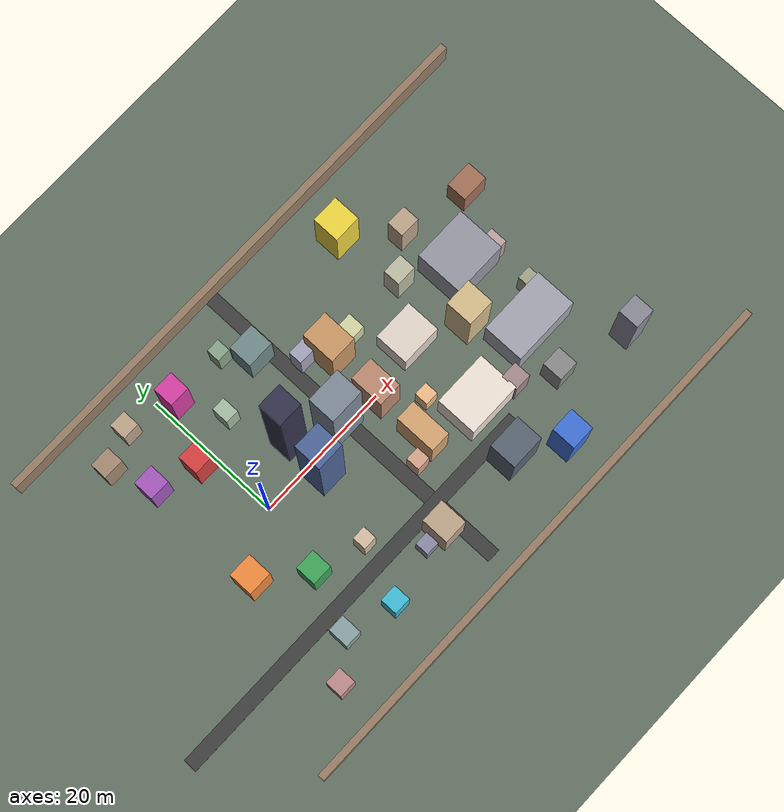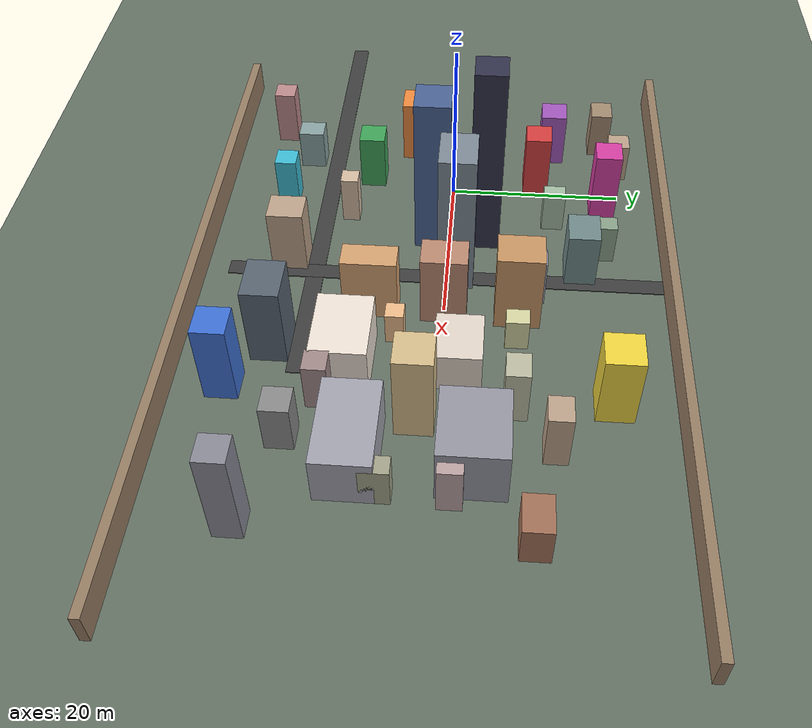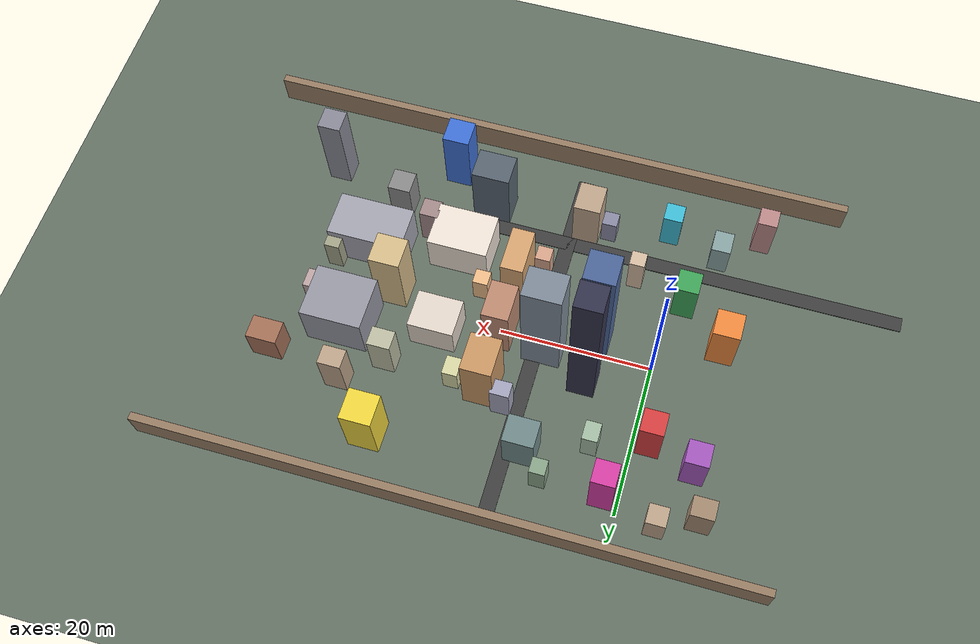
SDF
<?xml version="1.0" encoding="UTF-8"?>
<sdf version="1.9">
  <world name="default">
    <physics type="ode">
      <max_step_size>0.004</max_step_size>
      <real_time_factor>1.0</real_time_factor>
      <real_time_update_rate>250</real_time_update_rate>
    </physics>
    <plugin name="gz::sim::systems::Physics" filename="gz-sim-physics-system"/>
    <plugin name="gz::sim::systems::UserCommands" filename="gz-sim-user-commands-system"/>
    <plugin name="gz::sim::systems::SceneBroadcaster" filename="gz-sim-scene-broadcaster-system"/>
    <plugin name="gz::sim::systems::Contact" filename="gz-sim-contact-system"/>
    <plugin name="gz::sim::systems::Imu" filename="gz-sim-imu-system"/>
    <plugin name="gz::sim::systems::AirPressure" filename="gz-sim-air-pressure-system"/>
    <plugin name="gz::sim::systems::ApplyLinkWrench" filename="gz-sim-apply-link-wrench-system"/>
    <plugin name="gz::sim::systems::NavSat" filename="gz-sim-navsat-system"/>
    <plugin name="gz::sim::systems::Sensors" filename="gz-sim-sensors-system">
      <render_engine>ogre2</render_engine>
    </plugin>
    <gui fullscreen="false">
      <plugin filename="MinimalScene" name="3D View">
        <gz-gui>
          <title>3D View</title>
          <property type="bool" key="showTitleBar">false</property>
          <property type="string" key="state">docked</property>
        </gz-gui>
        <engine>ogre2</engine>
        <scene>scene</scene>
        <ambient_light>0.5 0.5 0.5</ambient_light>
        <background_color>0.6 0.8 1.0</background_color>
        <camera_pose>-8 0 12 0 0.6 0</camera_pose>
        <camera_clip>
          <near>0.25</near>
          <far>25000</far>
        </camera_clip>
      </plugin>
      <plugin filename="EntityContextMenuPlugin" name="Entity context menu">
        <gz-gui>
          <property key="state" type="string">floating</property>
          <property key="width" type="double">5</property>
          <property key="height" type="double">5</property>
          <property key="showTitleBar" type="bool">false</property>
        </gz-gui>
      </plugin>
      <plugin filename="GzSceneManager" name="Scene Manager">
        <gz-gui>
          <property key="resizable" type="bool">false</property>
          <property key="width" type="double">5</property>
          <property key="height" type="double">5</property>
          <property key="state" type="string">floating</property>
          <property key="showTitleBar" type="bool">false</property>
        </gz-gui>
      </plugin>
      <plugin filename="InteractiveViewControl" name="Interactive view control">
        <gz-gui>
          <property key="resizable" type="bool">false</property>
          <property key="width" type="double">5</property>
          <property key="height" type="double">5</property>
          <property key="state" type="string">floating</property>
          <property key="showTitleBar" type="bool">false</property>
        </gz-gui>
      </plugin>
      <plugin filename="CameraTracking" name="Camera Tracking">
        <gz-gui>
          <property key="resizable" type="bool">false</property>
          <property key="width" type="double">5</property>
          <property key="height" type="double">5</property>
          <property key="state" type="string">floating</property>
          <property key="showTitleBar" type="bool">false</property>
        </gz-gui>
      </plugin>
      <plugin filename="MarkerManager" name="Marker manager">
        <gz-gui>
          <property key="resizable" type="bool">false</property>
          <property key="width" type="double">5</property>
          <property key="height" type="double">5</property>
          <property key="state" type="string">floating</property>
          <property key="showTitleBar" type="bool">false</property>
        </gz-gui>
      </plugin>
      <plugin filename="SelectEntities" name="Select Entities">
        <gz-gui>
          <anchors target="Select entities">
            <line own="right" target="right"/>
            <line own="top" target="top"/>
          </anchors>
          <property key="resizable" type="bool">false</property>
          <property key="width" type="double">5</property>
          <property key="height" type="double">5</property>
          <property key="state" type="string">floating</property>
          <property key="showTitleBar" type="bool">false</property>
        </gz-gui>
      </plugin>
      <plugin filename="VisualizationCapabilities" name="Visualization Capabilities">
        <gz-gui>
          <property key="resizable" type="bool">false</property>
          <property key="width" type="double">5</property>
          <property key="height" type="double">5</property>
          <property key="state" type="string">floating</property>
          <property key="showTitleBar" type="bool">false</property>
        </gz-gui>
      </plugin>
      <plugin filename="Spawn" name="Spawn Entities">
        <gz-gui>
          <anchors target="Select entities">
            <line own="right" target="right"/>
            <line own="top" target="top"/>
          </anchors>
          <property key="resizable" type="bool">false</property>
          <property key="width" type="double">5</property>
          <property key="height" type="double">5</property>
          <property key="state" type="string">floating</property>
          <property key="showTitleBar" type="bool">false</property>
        </gz-gui>
      </plugin>
      <plugin name="World control" filename="WorldControl">
        <gz-gui>
          <title>World control</title>
          <property type="bool" key="showTitleBar">0</property>
          <property type="bool" key="resizable">0</property>
          <property type="double" key="height">72</property>
          <property type="double" key="width">121</property>
          <property type="double" key="z">1</property>
          <property type="string" key="state">floating</property>
          <anchors target="3D View">
            <line own="left" target="left"/>
            <line own="bottom" target="bottom"/>
          </anchors>
        </gz-gui>
        <play_pause>1</play_pause>
        <step>1</step>
        <start_paused>1</start_paused>
      </plugin>
      <plugin name="World stats" filename="WorldStats">
        <gz-gui>
          <title>World stats</title>
          <property type="bool" key="showTitleBar">0</property>
          <property type="bool" key="resizable">0</property>
          <property type="double" key="height">110</property>
          <property type="double" key="width">290</property>
          <property type="double" key="z">1</property>
          <property type="string" key="state">floating</property>
          <anchors target="3D View">
            <line own="right" target="right"/>
            <line own="bottom" target="bottom"/>
          </anchors>
        </gz-gui>
        <sim_time>1</sim_time>
        <real_time>1</real_time>
        <real_time_factor>1</real_time_factor>
        <iterations>1</iterations>
      </plugin>
      <plugin name="Entity tree" filename="EntityTree"/>
    </gui>
    <gravity>0 0 -9.8</gravity>
    <magnetic_field>6e-06 2.3e-05 -4.2e-05</magnetic_field>
    <atmosphere type="adiabatic"/>
    <scene>
      <grid>false</grid>
      <ambient>0.5 0.5 0.5 1</ambient>
      <background>0.6 0.8 1.0 1</background>
      <shadows>true</shadows>
      <sky>true</sky>
    </scene>

    <!-- Ground plane with grid texture -->
    <model name="ground_plane">
      <static>true</static>
      <link name="link">
        <collision name="collision">
          <geometry>
            <plane>
              <normal>0 0 1</normal>
              <size>1 1</size>
            </plane>
          </geometry>
          <surface>
            <friction>
              <ode/>
            </friction>
            <bounce/>
            <contact/>
          </surface>
        </collision>
        <visual name="visual">
          <geometry>
            <plane>
              <normal>0 0 1</normal>
              <size>150 150</size>
            </plane>
          </geometry>
          <material>
            <ambient>0.3 0.35 0.3 1</ambient>
            <diffuse>0.4 0.45 0.4 1</diffuse>
            <specular>0.1 0.1 0.1 1</specular>
          </material>
        </visual>
        <pose>0 0 0 0 -0 0</pose>
        <inertial>
          <pose>0 0 0 0 -0 0</pose>
          <mass>1</mass>
          <inertia>
            <ixx>1</ixx>
            <ixy>0</ixy>
            <ixz>0</ixz>
            <iyy>1</iyy>
            <iyz>0</iyz>
            <izz>1</izz>
          </inertia>
        </inertial>
        <enable_wind>false</enable_wind>
      </link>
      <pose>0 0 0 0 -0 0</pose>
      <self_collide>false</self_collide>
    </model>

    <!-- CITY LAYOUT - Strategic building placement with open spaces -->

    <!-- Downtown District - Tall buildings cluster -->
    <model name="skyscraper_1">
      <pose>8 -2 10 0 0 0</pose>
      <static>true</static>
      <link name="link">
        <collision name="collision">
          <geometry>
            <box>
              <size>4 4 20</size>
            </box>
          </geometry>
        </collision>
        <visual name="visual">
          <geometry>
            <box>
              <size>4 4 20</size>
            </box>
          </geometry>
          <material>
            <ambient>0.2 0.3 0.5 1</ambient>
            <diffuse>0.3 0.4 0.6 1</diffuse>
            <specular>0.8 0.8 0.8 1</specular>
          </material>
        </visual>
      </link>
    </model>

    <model name="skyscraper_2">
      <pose>8 4 12 0 0 0</pose>
      <static>true</static>
      <link name="link">
        <collision name="collision">
          <geometry>
            <box>
              <size>3.5 3.5 24</size>
            </box>
          </geometry>
        </collision>
        <visual name="visual">
          <geometry>
            <box>
              <size>3.5 3.5 24</size>
            </box>
          </geometry>
          <material>
            <ambient>0.15 0.15 0.2 1</ambient>
            <diffuse>0.2 0.2 0.3 1</diffuse>
            <specular>0.9 0.9 0.9 1</specular>
          </material>
        </visual>
      </link>
    </model>

    <model name="office_tower">
      <pose>14 1 9 0 0 0</pose>
      <static>true</static>
      <link name="link">
        <collision name="collision">
          <geometry>
            <box>
              <size>5 4 18</size>
            </box>
          </geometry>
        </collision>
        <visual name="visual">
          <geometry>
            <box>
              <size>5 4 18</size>
            </box>
          </geometry>
          <material>
            <ambient>0.4 0.45 0.5 1</ambient>
            <diffuse>0.5 0.55 0.6 1</diffuse>
            <specular>0.7 0.7 0.7 1</specular>
          </material>
        </visual>
      </link>
    </model>

    <!-- Mid-rise buildings - Residential area -->
    <model name="apartment_1">
      <pose>20 -8 4 0 0 0</pose>
      <static>true</static>
      <link name="link">
        <collision name="collision">
          <geometry>
            <box>
              <size>3 6 8</size>
            </box>
          </geometry>
        </collision>
        <visual name="visual">
          <geometry>
            <box>
              <size>3 6 8</size>
            </box>
          </geometry>
          <material>
            <ambient>0.8 0.6 0.4 1</ambient>
            <diffuse>0.85 0.65 0.45 1</diffuse>
            <specular>0.3 0.3 0.3 1</specular>
          </material>
        </visual>
      </link>
    </model>

    <model name="apartment_2">
      <pose>20 0 4.5 0 0 0</pose>
      <static>true</static>
      <link name="link">
        <collision name="collision">
          <geometry>
            <box>
              <size>3.5 5 9</size>
            </box>
          </geometry>
        </collision>
        <visual name="visual">
          <geometry>
            <box>
              <size>3.5 5 9</size>
            </box>
          </geometry>
          <material>
            <ambient>0.7 0.5 0.4 1</ambient>
            <diffuse>0.75 0.55 0.45 1</diffuse>
            <specular>0.3 0.3 0.3 1</specular>
          </material>
        </visual>
      </link>
    </model>

    <model name="apartment_3">
      <pose>20 8 5 0 0 0</pose>
      <static>true</static>
      <link name="link">
        <collision name="collision">
          <geometry>
            <box>
              <size>4 5 10</size>
            </box>
          </geometry>
        </collision>
        <visual name="visual">
          <geometry>
            <box>
              <size>4 5 10</size>
            </box>
          </geometry>
          <material>
            <ambient>0.75 0.55 0.35 1</ambient>
            <diffuse>0.8 0.6 0.4 1</diffuse>
            <specular>0.3 0.3 0.3 1</specular>
          </material>
        </visual>
      </link>
    </model>

    <!-- Commercial district -->
    <model name="mall_complex">
      <pose>28 -10 3 0 0 0</pose>
      <static>true</static>
      <link name="link">
        <collision name="collision">
          <geometry>
            <box>
              <size>8 6 6</size>
            </box>
          </geometry>
        </collision>
        <visual name="visual">
          <geometry>
            <box>
              <size>8 6 6</size>
            </box>
          </geometry>
          <material>
            <ambient>0.9 0.85 0.8 1</ambient>
            <diffuse>0.95 0.9 0.85 1</diffuse>
            <specular>0.5 0.5 0.5 1</specular>
          </material>
        </visual>
      </link>
    </model>

    <model name="retail_building">
      <pose>28 2 2.5 0 0 0</pose>
      <static>true</static>
      <link name="link">
        <collision name="collision">
          <geometry>
            <box>
              <size>6 5 5</size>
            </box>
          </geometry>
        </collision>
        <visual name="visual">
          <geometry>
            <box>
              <size>6 5 5</size>
            </box>
          </geometry>
          <material>
            <ambient>0.85 0.8 0.75 1</ambient>
            <diffuse>0.9 0.85 0.8 1</diffuse>
            <specular>0.4 0.4 0.4 1</specular>
          </material>
        </visual>
      </link>
    </model>

    <!-- Industrial zone - wider spacing -->
    <model name="warehouse_1">
      <pose>40 -8 3 0 0 0</pose>
      <static>true</static>
      <link name="link">
        <collision name="collision">
          <geometry>
            <box>
              <size>10 6 6</size>
            </box>
          </geometry>
        </collision>
        <visual name="visual">
          <geometry>
            <box>
              <size>10 6 6</size>
            </box>
          </geometry>
          <material>
            <ambient>0.6 0.6 0.65 1</ambient>
            <diffuse>0.65 0.65 0.7 1</diffuse>
            <specular>0.2 0.2 0.2 1</specular>
          </material>
        </visual>
      </link>
    </model>

    <model name="warehouse_2">
      <pose>40 4 3.5 0 0 0</pose>
      <static>true</static>
      <link name="link">
        <collision name="collision">
          <geometry>
            <box>
              <size>8 7 7</size>
            </box>
          </geometry>
        </collision>
        <visual name="visual">
          <geometry>
            <box>
              <size>8 7 7</size>
            </box>
          </geometry>
          <material>
            <ambient>0.55 0.55 0.6 1</ambient>
            <diffuse>0.6 0.6 0.65 1</diffuse>
            <specular>0.2 0.2 0.2 1</specular>
          </material>
        </visual>
      </link>
    </model>

    <!-- Scattered mid-size buildings -->
    <model name="building_red">
      <pose>-2 10 4 0 0 0</pose>
      <static>true</static>
      <link name="link">
        <collision name="collision">
          <geometry>
            <box>
              <size>3 3 8</size>
            </box>
          </geometry>
        </collision>
        <visual name="visual">
          <geometry>
            <box>
              <size>3 3 8</size>
            </box>
          </geometry>
          <material>
            <ambient>0.8 0.2 0.2 1</ambient>
            <diffuse>0.85 0.25 0.25 1</diffuse>
            <specular>0.4 0.4 0.4 1</specular>
          </material>
        </visual>
      </link>
    </model>

    <model name="building_green">
      <pose>-2 -10 3.5 0 0 0</pose>
      <static>true</static>
      <link name="link">
        <collision name="collision">
          <geometry>
            <box>
              <size>3 3 7</size>
            </box>
          </geometry>
        </collision>
        <visual name="visual">
          <geometry>
            <box>
              <size>3 3 7</size>
            </box>
          </geometry>
          <material>
            <ambient>0.2 0.6 0.3 1</ambient>
            <diffuse>0.25 0.65 0.35 1</diffuse>
            <specular>0.4 0.4 0.4 1</specular>
          </material>
        </visual>
      </link>
    </model>

    <model name="building_blue">
      <pose>32 -22 5 0 0 0</pose>
      <static>true</static>
      <link name="link">
        <collision name="collision">
          <geometry>
            <box>
              <size>3.5 3.5 10</size>
            </box>
          </geometry>
        </collision>
        <visual name="visual">
          <geometry>
            <box>
              <size>3.5 3.5 10</size>
            </box>
          </geometry>
          <material>
            <ambient>0.2 0.4 0.8 1</ambient>
            <diffuse>0.25 0.45 0.85 1</diffuse>
            <specular>0.5 0.5 0.5 1</specular>
          </material>
        </visual>
      </link>
    </model>

    <model name="building_yellow">
      <pose>32 18 4.5 0 0 0</pose>
      <static>true</static>
      <link name="link">
        <collision name="collision">
          <geometry>
            <box>
              <size>4 4 9</size>
            </box>
          </geometry>
        </collision>
        <visual name="visual">
          <geometry>
            <box>
              <size>4 4 9</size>
            </box>
          </geometry>
          <material>
            <ambient>0.9 0.8 0.2 1</ambient>
            <diffuse>0.95 0.85 0.25 1</diffuse>
            <specular>0.4 0.4 0.4 1</specular>
          </material>
        </visual>
      </link>
    </model>

    <!-- Additional Buildings - More variety -->
    <model name="building_purple">
      <pose>-8 12 3.5 0 0 0</pose>
      <static>true</static>
      <link name="link">
        <collision name="collision">
          <geometry>
            <box>
              <size>3 3 7</size>
            </box>
          </geometry>
        </collision>
        <visual name="visual">
          <geometry>
            <box>
              <size>3 3 7</size>
            </box>
          </geometry>
          <material>
            <ambient>0.6 0.3 0.7 1</ambient>
            <diffuse>0.65 0.35 0.75 1</diffuse>
            <specular>0.4 0.4 0.4 1</specular>
          </material>
        </visual>
      </link>
    </model>

    <model name="building_orange">
      <pose>-8 -5 4 0 0 0</pose>
      <static>true</static>
      <link name="link">
        <collision name="collision">
          <geometry>
            <box>
              <size>3.5 3.5 8</size>
            </box>
          </geometry>
        </collision>
        <visual name="visual">
          <geometry>
            <box>
              <size>3.5 3.5 8</size>
            </box>
          </geometry>
          <material>
            <ambient>0.9 0.5 0.2 1</ambient>
            <diffuse>0.95 0.55 0.25 1</diffuse>
            <specular>0.4 0.4 0.4 1</specular>
          </material>
        </visual>
      </link>
    </model>

    <model name="building_cyan">
      <pose>2 -20 3 0 0 0</pose>
      <static>true</static>
      <link name="link">
        <collision name="collision">
          <geometry>
            <box>
              <size>2.5 2.5 6</size>
            </box>
          </geometry>
        </collision>
        <visual name="visual">
          <geometry>
            <box>
              <size>2.5 2.5 6</size>
            </box>
          </geometry>
          <material>
            <ambient>0.2 0.7 0.8 1</ambient>
            <diffuse>0.25 0.75 0.85 1</diffuse>
            <specular>0.5 0.5 0.5 1</specular>
          </material>
        </visual>
      </link>
    </model>

    <model name="building_magenta">
      <pose>2 18 4.5 0 0 0</pose>
      <static>true</static>
      <link name="link">
        <collision name="collision">
          <geometry>
            <box>
              <size>3 3 9</size>
            </box>
          </geometry>
        </collision>
        <visual name="visual">
          <geometry>
            <box>
              <size>3 3 9</size>
            </box>
          </geometry>
          <material>
            <ambient>0.8 0.2 0.6 1</ambient>
            <diffuse>0.85 0.25 0.65 1</diffuse>
            <specular>0.4 0.4 0.4 1</specular>
          </material>
        </visual>
      </link>
    </model>

    <model name="midrise_beige">
      <pose>35 -2 5.5 0 0 0</pose>
      <static>true</static>
      <link name="link">
        <collision name="collision">
          <geometry>
            <box>
              <size>4 4 11</size>
            </box>
          </geometry>
        </collision>
        <visual name="visual">
          <geometry>
            <box>
              <size>4 4 11</size>
            </box>
          </geometry>
          <material>
            <ambient>0.8 0.7 0.5 1</ambient>
            <diffuse>0.85 0.75 0.55 1</diffuse>
            <specular>0.3 0.3 0.3 1</specular>
          </material>
        </visual>
      </link>
    </model>

    <model name="tower_gray">
      <pose>48 -18 6 0 0 0</pose>
      <static>true</static>
      <link name="link">
        <collision name="collision">
          <geometry>
            <box>
              <size>3 3 12</size>
            </box>
          </geometry>
        </collision>
        <visual name="visual">
          <geometry>
            <box>
              <size>3 3 12</size>
            </box>
          </geometry>
          <material>
            <ambient>0.5 0.5 0.55 1</ambient>
            <diffuse>0.55 0.55 0.6 1</diffuse>
            <specular>0.6 0.6 0.6 1</specular>
          </material>
        </visual>
      </link>
    </model>

    <model name="lowrise_brown">
      <pose>48 10 2.5 0 0 0</pose>
      <static>true</static>
      <link name="link">
        <collision name="collision">
          <geometry>
            <box>
              <size>4 3 5</size>
            </box>
          </geometry>
        </collision>
        <visual name="visual">
          <geometry>
            <box>
              <size>4 3 5</size>
            </box>
          </geometry>
          <material>
            <ambient>0.6 0.4 0.3 1</ambient>
            <diffuse>0.65 0.45 0.35 1</diffuse>
            <specular>0.3 0.3 0.3 1</specular>
          </material>
        </visual>
      </link>
    </model>

    <model name="corner_building">
      <pose>13 -18 4 0 0 0</pose>
      <static>true</static>
      <link name="link">
        <collision name="collision">
          <geometry>
            <box>
              <size>3.5 4 8</size>
            </box>
          </geometry>
        </collision>
        <visual name="visual">
          <geometry>
            <box>
              <size>3.5 4 8</size>
            </box>
          </geometry>
          <material>
            <ambient>0.7 0.6 0.5 1</ambient>
            <diffuse>0.75 0.65 0.55 1</diffuse>
            <specular>0.4 0.4 0.4 1</specular>
          </material>
        </visual>
      </link>
    </model>

    <model name="plaza_building">
      <pose>13 15 3.5 0 0 0</pose>
      <static>true</static>
      <link name="link">
        <collision name="collision">
          <geometry>
            <box>
              <size>4 3.5 7</size>
            </box>
          </geometry>
        </collision>
        <visual name="visual">
          <geometry>
            <box>
              <size>4 3.5 7</size>
            </box>
          </geometry>
          <material>
            <ambient>0.4 0.5 0.5 1</ambient>
            <diffuse>0.45 0.55 0.55 1</diffuse>
            <specular>0.5 0.5 0.5 1</specular>
          </material>
        </visual>
      </link>
    </model>

    <model name="bank_building">
      <pose>26 -18 5 0 0 0</pose>
      <static>true</static>
      <link name="link">
        <collision name="collision">
          <geometry>
            <box>
              <size>5 4 10</size>
            </box>
          </geometry>
        </collision>
        <visual name="visual">
          <geometry>
            <box>
              <size>5 4 10</size>
            </box>
          </geometry>
          <material>
            <ambient>0.3 0.35 0.4 1</ambient>
            <diffuse>0.35 0.4 0.45 1</diffuse>
            <specular>0.7 0.7 0.7 1</specular>
          </material>
        </visual>
      </link>
    </model>

    <!-- Corner and filler buildings - Low to medium height -->
    <model name="corner_nw_1">
      <pose>-5 20 2.5 0 0 0</pose>
      <static>true</static>
      <link name="link">
        <collision name="collision">
          <geometry>
            <box>
              <size>2.5 2.5 5</size>
            </box>
          </geometry>
        </collision>
        <visual name="visual">
          <geometry>
            <box>
              <size>2.5 2.5 5</size>
            </box>
          </geometry>
          <material>
            <ambient>0.7 0.6 0.5 1</ambient>
            <diffuse>0.75 0.65 0.55 1</diffuse>
            <specular>0.3 0.3 0.3 1</specular>
          </material>
        </visual>
      </link>
    </model>

    <model name="corner_nw_2">
      <pose>-10 18 3 0 0 0</pose>
      <static>true</static>
      <link name="link">
        <collision name="collision">
          <geometry>
            <box>
              <size>3 2.5 6</size>
            </box>
          </geometry>
        </collision>
        <visual name="visual">
          <geometry>
            <box>
              <size>3 2.5 6</size>
            </box>
          </geometry>
          <material>
            <ambient>0.6 0.5 0.4 1</ambient>
            <diffuse>0.65 0.55 0.45 1</diffuse>
            <specular>0.3 0.3 0.3 1</specular>
          </material>
        </visual>
      </link>
    </model>

    <model name="corner_sw_1">
      <pose>-5 -18 2.5 0 0 0</pose>
      <static>true</static>
      <link name="link">
        <collision name="collision">
          <geometry>
            <box>
              <size>2.5 3 5</size>
            </box>
          </geometry>
        </collision>
        <visual name="visual">
          <geometry>
            <box>
              <size>2.5 3 5</size>
            </box>
          </geometry>
          <material>
            <ambient>0.5 0.6 0.6 1</ambient>
            <diffuse>0.55 0.65 0.65 1</diffuse>
            <specular>0.4 0.4 0.4 1</specular>
          </material>
        </visual>
      </link>
    </model>

    <model name="corner_sw_2">
      <pose>-10 -22 3.5 0 0 0</pose>
      <static>true</static>
      <link name="link">
        <collision name="collision">
          <geometry>
            <box>
              <size>2.5 2.5 7</size>
            </box>
          </geometry>
        </collision>
        <visual name="visual">
          <geometry>
            <box>
              <size>2.5 2.5 7</size>
            </box>
          </geometry>
          <material>
            <ambient>0.7 0.5 0.5 1</ambient>
            <diffuse>0.75 0.55 0.55 1</diffuse>
            <specular>0.3 0.3 0.3 1</specular>
          </material>
        </visual>
      </link>
    </model>

    <model name="filler_mid_1">
      <pose>5 -12 3 0 0 0</pose>
      <static>true</static>
      <link name="link">
        <collision name="collision">
          <geometry>
            <box>
              <size>2 2 6</size>
            </box>
          </geometry>
        </collision>
        <visual name="visual">
          <geometry>
            <box>
              <size>2 2 6</size>
            </box>
          </geometry>
          <material>
            <ambient>0.8 0.7 0.6 1</ambient>
            <diffuse>0.85 0.75 0.65 1</diffuse>
            <specular>0.3 0.3 0.3 1</specular>
          </material>
        </visual>
      </link>
    </model>

    <model name="filler_mid_2">
      <pose>5 12 2.5 0 0 0</pose>
      <static>true</static>
      <link name="link">
        <collision name="collision">
          <geometry>
            <box>
              <size>2 2.5 5</size>
            </box>
          </geometry>
        </collision>
        <visual name="visual">
          <geometry>
            <box>
              <size>2 2.5 5</size>
            </box>
          </geometry>
          <material>
            <ambient>0.6 0.7 0.6 1</ambient>
            <diffuse>0.65 0.75 0.65 1</diffuse>
            <specular>0.3 0.3 0.3 1</specular>
          </material>
        </visual>
      </link>
    </model>

    <model name="filler_east_1">
      <pose>38 -15 3 0 0 0</pose>
      <static>true</static>
      <link name="link">
        <collision name="collision">
          <geometry>
            <box>
              <size>3 3 6</size>
            </box>
          </geometry>
        </collision>
        <visual name="visual">
          <geometry>
            <box>
              <size>3 3 6</size>
            </box>
          </geometry>
          <material>
            <ambient>0.5 0.5 0.5 1</ambient>
            <diffuse>0.55 0.55 0.55 1</diffuse>
            <specular>0.4 0.4 0.4 1</specular>
          </material>
        </visual>
      </link>
    </model>

    <model name="filler_east_2">
      <pose>38 12 3.5 0 0 0</pose>
      <static>true</static>
      <link name="link">
        <collision name="collision">
          <geometry>
            <box>
              <size>3 2.5 7</size>
            </box>
          </geometry>
        </collision>
        <visual name="visual">
          <geometry>
            <box>
              <size>3 2.5 7</size>
            </box>
          </geometry>
          <material>
            <ambient>0.7 0.6 0.5 1</ambient>
            <diffuse>0.75 0.65 0.55 1</diffuse>
            <specular>0.3 0.3 0.3 1</specular>
          </material>
        </visual>
      </link>
    </model>

    <model name="filler_center_1">
      <pose>17 -10 2.5 0 0 0</pose>
      <static>true</static>
      <link name="link">
        <collision name="collision">
          <geometry>
            <box>
              <size>2 2 5</size>
            </box>
          </geometry>
        </collision>
        <visual name="visual">
          <geometry>
            <box>
              <size>2 2 5</size>
            </box>
          </geometry>
          <material>
            <ambient>0.8 0.6 0.5 1</ambient>
            <diffuse>0.85 0.65 0.55 1</diffuse>
            <specular>0.3 0.3 0.3 1</specular>
          </material>
        </visual>
      </link>
    </model>

    <model name="filler_center_2">
      <pose>17 10 3 0 0 0</pose>
      <static>true</static>
      <link name="link">
        <collision name="collision">
          <geometry>
            <box>
              <size>2.5 2 6</size>
            </box>
          </geometry>
        </collision>
        <visual name="visual">
          <geometry>
            <box>
              <size>2.5 2 6</size>
            </box>
          </geometry>
          <material>
            <ambient>0.6 0.6 0.7 1</ambient>
            <diffuse>0.65 0.65 0.75 1</diffuse>
            <specular>0.4 0.4 0.4 1</specular>
          </material>
        </visual>
      </link>
    </model>

    <model name="small_shop_1">
      <pose>24 -5 2 0 0 0</pose>
      <static>true</static>
      <link name="link">
        <collision name="collision">
          <geometry>
            <box>
              <size>2 2 4</size>
            </box>
          </geometry>
        </collision>
        <visual name="visual">
          <geometry>
            <box>
              <size>2 2 4</size>
            </box>
          </geometry>
          <material>
            <ambient>0.9 0.7 0.5 1</ambient>
            <diffuse>0.95 0.75 0.55 1</diffuse>
            <specular>0.3 0.3 0.3 1</specular>
          </material>
        </visual>
      </link>
    </model>

    <model name="small_shop_2">
      <pose>24 8 2 0 0 0</pose>
      <static>true</static>
      <link name="link">
        <collision name="collision">
          <geometry>
            <box>
              <size>2 2.5 4</size>
            </box>
          </geometry>
        </collision>
        <visual name="visual">
          <geometry>
            <box>
              <size>2 2.5 4</size>
            </box>
          </geometry>
          <material>
            <ambient>0.8 0.8 0.6 1</ambient>
            <diffuse>0.85 0.85 0.65 1</diffuse>
            <specular>0.3 0.3 0.3 1</specular>
          </material>
        </visual>
      </link>
    </model>

    <model name="utility_1">
      <pose>10 -18 2 0 0 0</pose>
      <static>true</static>
      <link name="link">
        <collision name="collision">
          <geometry>
            <box>
              <size>2 2 4</size>
            </box>
          </geometry>
        </collision>
        <visual name="visual">
          <geometry>
            <box>
              <size>2 2 4</size>
            </box>
          </geometry>
          <material>
            <ambient>0.5 0.5 0.6 1</ambient>
            <diffuse>0.55 0.55 0.65 1</diffuse>
            <specular>0.2 0.2 0.2 1</specular>
          </material>
        </visual>
      </link>
    </model>

    <model name="utility_2">
      <pose>10 18 2.5 0 0 0</pose>
      <static>true</static>
      <link name="link">
        <collision name="collision">
          <geometry>
            <box>
              <size>2 2 5</size>
            </box>
          </geometry>
        </collision>
        <visual name="visual">
          <geometry>
            <box>
              <size>2 2 5</size>
            </box>
          </geometry>
          <material>
            <ambient>0.5 0.6 0.5 1</ambient>
            <diffuse>0.55 0.65 0.55 1</diffuse>
            <specular>0.2 0.2 0.2 1</specular>
          </material>
        </visual>
      </link>
    </model>

    <model name="row_building_1">
      <pose>33 -12 3 0 0 0</pose>
      <static>true</static>
      <link name="link">
        <collision name="collision">
          <geometry>
            <box>
              <size>2.5 2.5 6</size>
            </box>
          </geometry>
        </collision>
        <visual name="visual">
          <geometry>
            <box>
              <size>2.5 2.5 6</size>
            </box>
          </geometry>
          <material>
            <ambient>0.6 0.5 0.5 1</ambient>
            <diffuse>0.65 0.55 0.55 1</diffuse>
            <specular>0.3 0.3 0.3 1</specular>
          </material>
        </visual>
      </link>
    </model>

    <model name="row_building_2">
      <pose>33 8 3.5 0 0 0</pose>
      <static>true</static>
      <link name="link">
        <collision name="collision">
          <geometry>
            <box>
              <size>3 2.5 7</size>
            </box>
          </geometry>
        </collision>
        <visual name="visual">
          <geometry>
            <box>
              <size>3 2.5 7</size>
            </box>
          </geometry>
          <material>
            <ambient>0.7 0.7 0.6 1</ambient>
            <diffuse>0.75 0.75 0.65 1</diffuse>
            <specular>0.3 0.3 0.3 1</specular>
          </material>
        </visual>
      </link>
    </model>

    <model name="compact_1">
      <pose>44 -5 2.5 0 0 0</pose>
      <static>true</static>
      <link name="link">
        <collision name="collision">
          <geometry>
            <box>
              <size>2 3 5</size>
            </box>
          </geometry>
        </collision>
        <visual name="visual">
          <geometry>
            <box>
              <size>2 3 5</size>
            </box>
          </geometry>
          <material>
            <ambient>0.6 0.6 0.5 1</ambient>
            <diffuse>0.65 0.65 0.55 1</diffuse>
            <specular>0.2 0.2 0.2 1</specular>
          </material>
        </visual>
      </link>
    </model>

    <model name="compact_2">
      <pose>44 2 3 0 0 0</pose>
      <static>true</static>
      <link name="link">
        <collision name="collision">
          <geometry>
            <box>
              <size>2.5 2.5 6</size>
            </box>
          </geometry>
        </collision>
        <visual name="visual">
          <geometry>
            <box>
              <size>2.5 2.5 6</size>
            </box>
          </geometry>
          <material>
            <ambient>0.7 0.6 0.6 1</ambient>
            <diffuse>0.75 0.65 0.65 1</diffuse>
            <specular>0.3 0.3 0.3 1</specular>
          </material>
        </visual>
      </link>
    </model>

    <!-- Roads/Pathways (flat dark strips) -->
    <model name="main_road_1">
      <pose>15 0 0.05 0 0 0</pose>
      <static>true</static>
      <link name="link">
        <visual name="visual">
          <geometry>
            <box>
              <size>2 50 0.1</size>
            </box>
          </geometry>
          <material>
            <ambient>0.2 0.2 0.2 1</ambient>
            <diffuse>0.25 0.25 0.25 1</diffuse>
            <specular>0.1 0.1 0.1 1</specular>
          </material>
        </visual>
      </link>
    </model>

    <model name="main_road_2">
      <pose>0 -15 0.05 0 0 1.57</pose>
      <static>true</static>
      <link name="link">
        <visual name="visual">
          <geometry>
            <box>
              <size>2 60 0.1</size>
            </box>
          </geometry>
          <material>
            <ambient>0.2 0.2 0.2 1</ambient>
            <diffuse>0.25 0.25 0.25 1</diffuse>
            <specular>0.1 0.1 0.1 1</specular>
          </material>
        </visual>
      </link>
    </model>

    <!-- Boundary walls -->
    <model name="boundary_wall_north">
      <pose>20 25 2 0 0 0</pose>
      <static>true</static>
      <link name="link">
        <collision name="collision">
          <geometry>
            <box>
              <size>80 1 4</size>
            </box>
          </geometry>
        </collision>
        <visual name="visual">
          <geometry>
            <box>
              <size>80 1 4</size>
            </box>
          </geometry>
          <material>
            <ambient>0.5 0.4 0.3 1</ambient>
            <diffuse>0.6 0.5 0.4 1</diffuse>
            <specular>0.2 0.2 0.2 1</specular>
          </material>
        </visual>
      </link>
    </model>

    <model name="boundary_wall_south">
      <pose>20 -28 2 0 0 0</pose>
      <static>true</static>
      <link name="link">
        <collision name="collision">
          <geometry>
            <box>
              <size>80 1 4</size>
            </box>
          </geometry>
        </collision>
        <visual name="visual">
          <geometry>
            <box>
              <size>80 1 4</size>
            </box>
          </geometry>
          <material>
            <ambient>0.5 0.4 0.3 1</ambient>
            <diffuse>0.6 0.5 0.4 1</diffuse>
            <specular>0.2 0.2 0.2 1</specular>
          </material>
        </visual>
      </link>
    </model>

    <!-- Lighting -->
    <light name="sunUTC" type="directional">
      <pose>0 0 500 0 -0 0</pose>
      <cast_shadows>true</cast_shadows>
      <intensity>1.2</intensity>
      <direction>0.3 0.5 -0.8</direction>
      <diffuse>1.0 0.95 0.9 1</diffuse>
      <specular>0.4 0.4 0.4 1</specular>
      <attenuation>
        <range>2000</range>
        <linear>0</linear>
        <constant>1</constant>
        <quadratic>0</quadratic>
      </attenuation>
      <spot>
        <inner_angle>0</inner_angle>
        <outer_angle>0</outer_angle>
        <falloff>0</falloff>
      </spot>
    </light>

    <spherical_coordinates>
      <surface_model>EARTH_WGS84</surface_model>
      <world_frame_orientation>ENU</world_frame_orientation>
      <latitude_deg>47.397971057728974</latitude_deg>
      <longitude_deg>8.546163739800146</longitude_deg>
      <elevation>0</elevation>
    </spherical_coordinates>
  </world>
</sdf>
